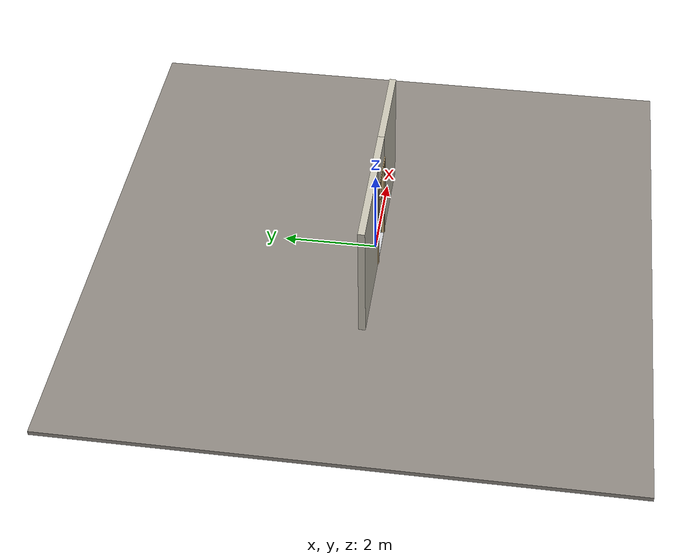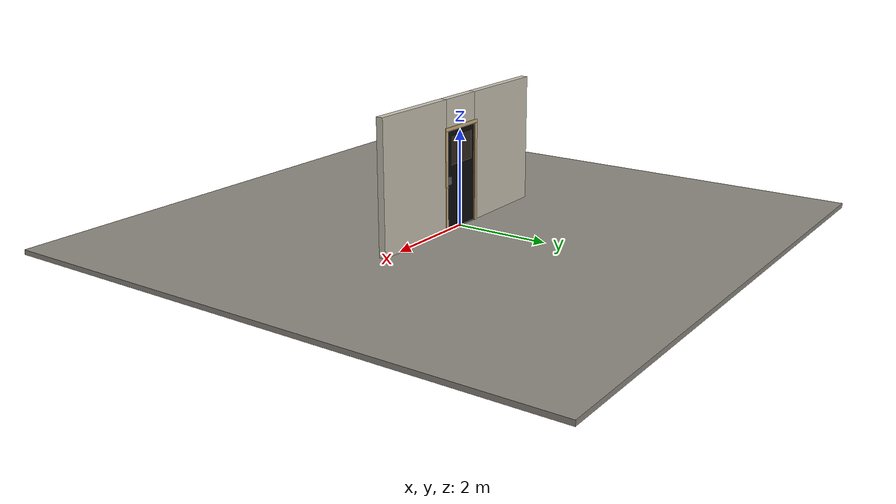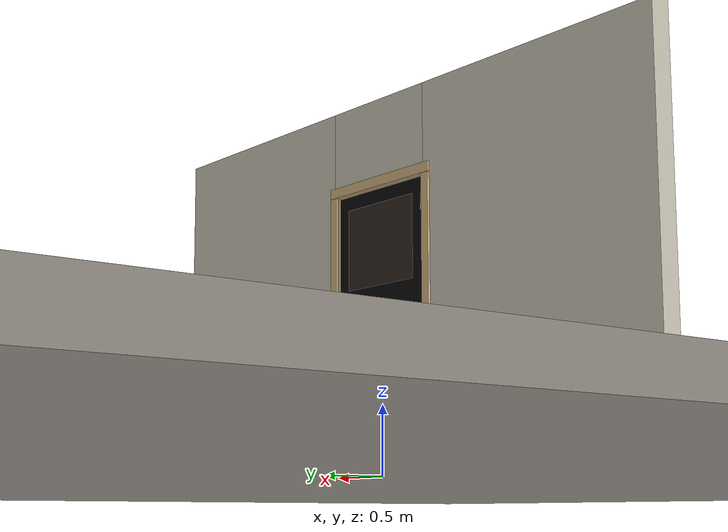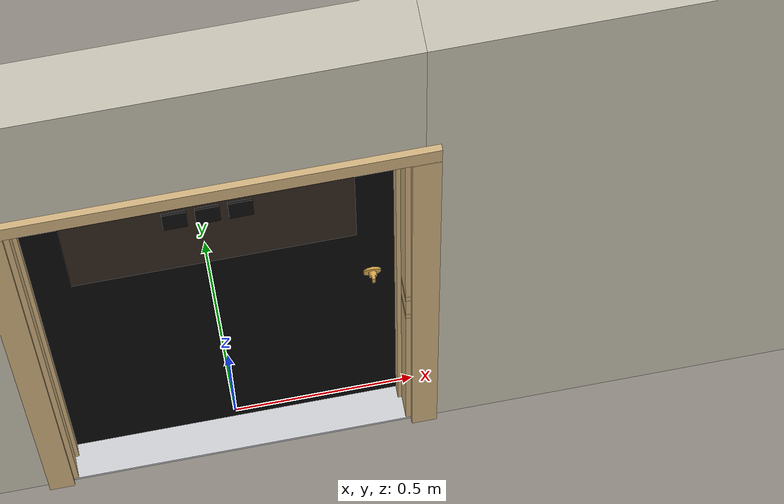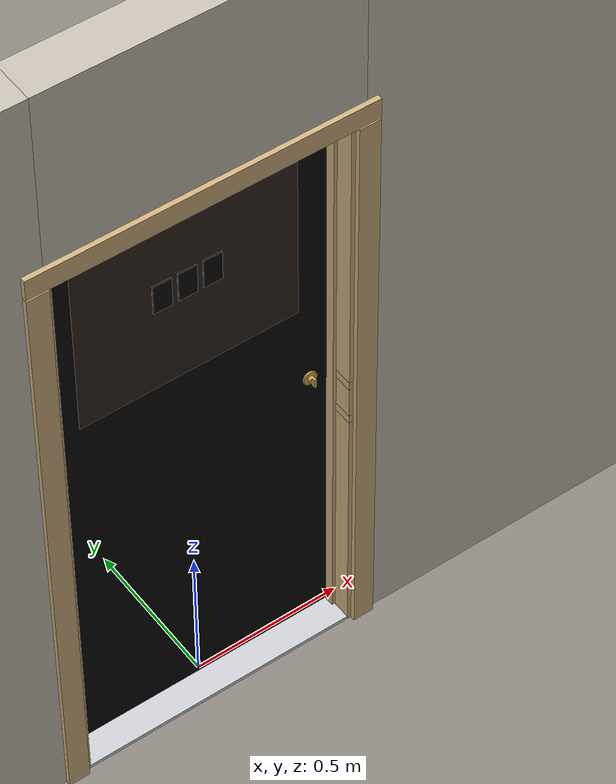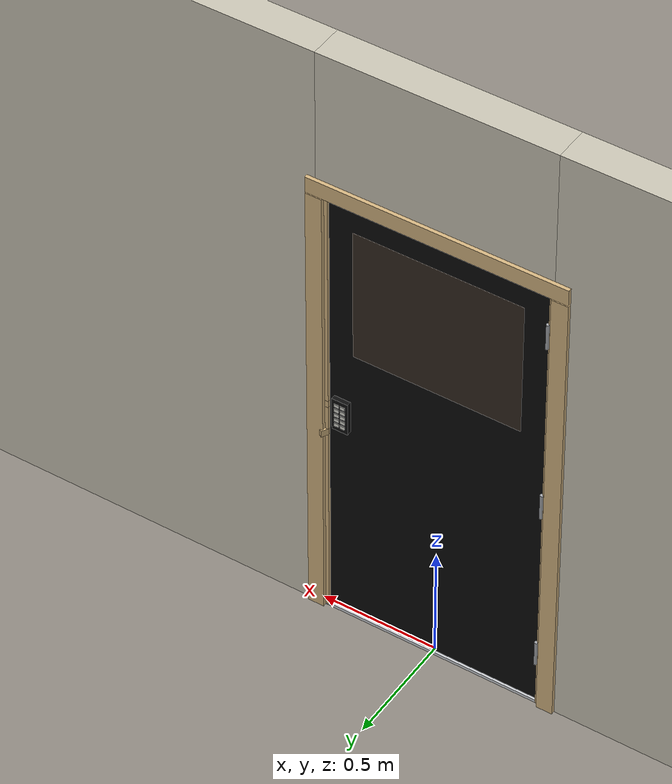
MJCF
<?xml version="1.0" ?>
<mujoco model="db0984_swing_single_full">
  <compiler angle="radian" meshdir="../../hardware" texturedir="../../textures" autolimits="true" inertiafromgeom="false"/>
  <option timestep="0.002" integrator="implicitfast" cone="elliptic" impratio="10" noslip_iterations="3">
    <flag multiccd="enable"/>
  </option>
  <size memory="16M"/>
  <default>
    <geom condim="4" solref="0.005 1" solimp="0.95 0.99 0.001"/>
    <joint solreflimit="0.005 1" solimplimit="0.95 0.99 0.001"/>
    <tendon solreflimit="0.005 1"/>
    <equality solref="0.002 1"/>
  </default>
  <visual>
    <headlight ambient="0.4 0.4 0.4" diffuse="0.7 0.7 0.7" specular="0.2 0.2 0.2"/>
    <quality shadowsize="4096"/>
    <map znear="0.01" zfar="60"/>
  </visual>
  <asset>
    <mesh name="hinge_e22b26c0c1" file="hinge_e22b26c0c1.obj"/>
    <mesh name="hinge_jamb_e1d088f8dc" file="hinge_jamb_e1d088f8dc.obj"/>
    <mesh name="house_numbers_ad0a8e8be0" file="house_numbers_ad0a8e8be0.obj"/>
    <mesh name="keypad_body_3b2d063948" file="keypad_body_3b2d063948.obj"/>
    <mesh name="thumbturn_eb5c9899a3" file="thumbturn_eb5c9899a3.obj"/>
    <material name="mat_floor" rgba="0.55 0.53 0.5 1" specular="0.2" shininess="0.15" reflectance="0"/>
    <material name="mat_wall" rgba="0.78 0.76 0.7 1" specular="0.2" shininess="0.1" reflectance="0"/>
    <material name="mat_leaf" rgba="0.04 0.04 0.04 1" specular="0.23" shininess="0.62" reflectance="0.02"/>
    <material name="mat_glass" rgba="0.45 0.35 0.28 0.45" specular="0.2" shininess="0.95" reflectance="0.1"/>
    <material name="mat_hinge" rgba="0.65 0.66 0.68 1" specular="0.74" shininess="0.5" reflectance="0.36"/>
    <material name="mat_op_nickel_satin" rgba="0.72 0.7 0.66 1" specular="0.8" shininess="0.65" reflectance="0.4"/>
    <material name="mat_trim" rgba="0.85 0.66 0.3 1" specular="0.8" shininess="0.75" reflectance="0.4"/>
    <material name="mat_keypad" rgba="0.05 0.05 0.05 1" specular="0.38" shininess="0.3" reflectance="0.12"/>
    <material name="mat_key" rgba="0.85 0.85 0.82 1" specular="0.2" shininess="0.5" reflectance="0"/>
    <material name="mat_bolt" rgba="0.75 0.76 0.77 1" specular="0.8" shininess="0.65" reflectance="0.4"/>
    <material name="mat_deadbolt" rgba="0.85 0.66 0.3 1" specular="0.8" shininess="0.75" reflectance="0.4"/>
    <material name="mat_frame" rgba="0.82 0.7 0.5 1" specular="0.2" shininess="0.45" reflectance="0"/>
    <material name="mat_threshold" rgba="0.8 0.81 0.83 1" specular="0.8" shininess="0.6" reflectance="0.4"/>
    <material name="mat_numbers" rgba="0.05 0.05 0.05 1" specular="0.38" shininess="0.3" reflectance="0.12"/>
    <material name="mat_drip" rgba="0.8 0.81 0.83 1" specular="0.8" shininess="0.6" reflectance="0.4"/>
    <texture name="skybox" type="skybox" builtin="gradient" rgb1="0.6 0.7 0.85" rgb2="0.9 0.92 0.95" width="256" height="256"/>
  </asset>
  <worldbody>
    <light name="sun" pos="1.5 -2.5 4" dir="-0.3 0.5 -0.8" directional="true" diffuse="0.8 0.8 0.8" specular="0.3 0.3 0.3" castshadow="true"/>
    <light name="fill" pos="-1.5 2.5 3" dir="0.3 -0.5 -0.7" directional="true" diffuse="0.35 0.35 0.4" castshadow="false"/>
    <camera name="robot_view" pos="0 -2.585687 1.734312" xyaxes="1 0 0 0 0.26963 0.962964" fovy="52"/>
    <camera name="far_view" pos="0 2.498687 1.734312" xyaxes="-1 0 0 0 -0.26963 0.962964" fovy="52"/>
    <camera name="iso" pos="1.932062 -2.178937 2.141063" xyaxes="0.741536 0.670913 0 -0.242917 0.268487 0.932151" fovy="46"/>
    <camera name="detail_handle" pos="0.5335 -0.8435 1.194" xyaxes="0.97561 0.219512 0 -0.070934 0.315262 0.94635" fovy="38"/>
    <geom name="floor" type="box" size="6 6 0.05" pos="0 0 -0.05" material="mat_floor" group="0" contype="1" conaffinity="1" friction="0.8 0.005 0.0001" density="2400"/>
    <geom name="wall_left" type="box" size="1.01025 0.0725 1.35" pos="-1.48975 -0.0435 1.35" material="mat_wall" group="0" contype="1" conaffinity="1" friction="0.6 0.005 0.0001" density="800"/>
    <geom name="wall_right" type="box" size="0.99525 0.0725 1.35" pos="1.50475 -0.0435 1.35" material="mat_wall" group="0" contype="1" conaffinity="1" friction="0.6 0.005 0.0001" density="800"/>
    <geom name="wall_header" type="box" size="0.4945 0.0725 0.303" pos="0.015 -0.0435 2.397" material="mat_wall" group="0" contype="1" conaffinity="1" friction="0.6 0.005 0.0001" density="800"/>
    <geom name="hinge_0_jamb" type="mesh" mesh="hinge_jamb_e1d088f8dc" pos="-0.4575 0.029 0.267" quat="0 1 0 0" material="mat_hinge" group="1" contype="0" conaffinity="0" density="7850"/>
    <geom name="hinge_1_jamb" type="mesh" mesh="hinge_jamb_e1d088f8dc" pos="-0.4575 0.029 1.029" quat="0 1 0 0" material="mat_hinge" group="1" contype="0" conaffinity="0" density="7850"/>
    <geom name="hinge_2_jamb" type="mesh" mesh="hinge_jamb_e1d088f8dc" pos="-0.4575 0.029 1.861" quat="0 1 0 0" material="mat_hinge" group="1" contype="0" conaffinity="0" density="7850"/>
    <geom name="leaf_deadbolt_strike_b" type="box" size="0.0155 0.003 0.0005" pos="0.46 0 1.0355" quat="-0.5 -0.5 0.5 0.5" material="mat_deadbolt" group="1" contype="0" conaffinity="0" density="7800"/>
    <geom name="leaf_deadbolt_strike_l" type="box" size="0.003 0.0155 0.0005" pos="0.46 0.0125 1.054" quat="-0.5 -0.5 0.5 0.5" material="mat_deadbolt" group="1" contype="0" conaffinity="0" density="7800"/>
    <geom name="leaf_deadbolt_strike_t" type="box" size="0.0155 0.003 0.0005" pos="0.46 0 1.0725" quat="-0.5 -0.5 0.5 0.5" material="mat_deadbolt" group="1" contype="0" conaffinity="0" density="7800"/>
    <geom name="leaf_deadbolt_strike_r" type="box" size="0.003 0.0155 0.0005" pos="0.46 -0.0125 1.054" quat="-0.5 -0.5 0.5 0.5" material="mat_deadbolt" group="1" contype="0" conaffinity="0" density="7800"/>
    <geom name="jamb_hinge" type="box" size="0.0095 0.0725 1.0225" pos="-0.47 -0.0435 1.0225" material="mat_frame" group="0" contype="1" conaffinity="1" friction="0.6 0.005 0.0001" density="400"/>
    <geom name="strike_914_wall_n" type="box" size="0.0245 0.05475 0.015" pos="0.485 -0.06125 0.914" material="mat_frame" group="0" contype="1" conaffinity="1" friction="0.6 0.005 0.0001" density="400"/>
    <geom name="strike_914_wall_p" type="box" size="0.0245 0.008 0.015" pos="0.485 0.0145 0.914" material="mat_frame" group="0" contype="1" conaffinity="1" friction="0.6 0.005 0.0001" density="400"/>
    <geom name="strike_914_ramp" type="box" size="0.0245 0.016771 0.015" pos="0.489913 0.026543 0.914" quat="0.973249 0 0 -0.229753" material="mat_frame" group="0" contype="1" conaffinity="1" friction="0.12 0.005 0.0001" density="400"/>
    <geom name="strike_914_back" type="box" size="0.0155 0.0065 0.015" pos="0.494 0 0.914" material="mat_frame" group="0" contype="1" conaffinity="1" friction="0.6 0.005 0.0001" density="400"/>
    <geom name="strike_1054_wall_n" type="box" size="0.0245 0.05325 0.0155" pos="0.485 -0.06275 1.054" material="mat_frame" group="0" contype="1" conaffinity="1" friction="0.6 0.005 0.0001" density="400"/>
    <geom name="strike_1054_wall_p" type="box" size="0.0245 0.00975 0.0155" pos="0.485 0.01925 1.054" material="mat_frame" group="0" contype="1" conaffinity="1" friction="0.6 0.005 0.0001" density="400"/>
    <geom name="strike_1054_back" type="box" size="0.0098 0.0095 0.0155" pos="0.4997 0 1.054" material="mat_frame" group="0" contype="1" conaffinity="1" friction="0.6 0.005 0.0001" density="400"/>
    <geom name="jamb_strike_0" type="box" size="0.0245 0.0725 0.4495" pos="0.485 -0.0435 0.4495" material="mat_frame" group="0" contype="1" conaffinity="1" friction="0.6 0.005 0.0001" density="400"/>
    <geom name="jamb_strike_1" type="box" size="0.0245 0.0725 0.05475" pos="0.485 -0.0435 0.98375" material="mat_frame" group="0" contype="1" conaffinity="1" friction="0.6 0.005 0.0001" density="400"/>
    <geom name="jamb_strike_2" type="box" size="0.0245 0.0725 0.48775" pos="0.485 -0.0435 1.55725" material="mat_frame" group="0" contype="1" conaffinity="1" friction="0.6 0.005 0.0001" density="400"/>
    <geom name="jamb_head" type="box" size="0.4945 0.0725 0.0095" pos="0.015 -0.0435 2.0545" material="mat_frame" group="0" contype="1" conaffinity="1" friction="0.6 0.005 0.0001" density="400"/>
    <geom name="head_stud" type="box" size="0.4945 0.0725 0.015" pos="0.015 -0.0435 2.079" material="mat_wall" group="0" contype="1" conaffinity="1" friction="0.6 0.005 0.0001" density="500"/>
    <geom name="stop_hinge" type="box" size="0.0055 0.016 1.0225" pos="-0.455 -0.0385 1.0225" material="mat_frame" group="0" contype="1" conaffinity="1" friction="0.6 0.005 0.0001" density="400"/>
    <geom name="stop_strike" type="box" size="0.0055 0.016 1.0225" pos="0.455 -0.0385 1.0225" material="mat_frame" group="0" contype="1" conaffinity="1" friction="0.6 0.005 0.0001" density="400"/>
    <geom name="stop_head" type="box" size="0.4605 0.016 0.0055" pos="0 -0.0385 2.0395" material="mat_frame" group="0" contype="1" conaffinity="1" friction="0.6 0.005 0.0001" density="400"/>
    <geom name="casing_l_n" type="box" size="0.035 0.008 1.032" pos="-0.5095 -0.124 1.0225" material="mat_frame" group="2" contype="0" conaffinity="0" density="400"/>
    <geom name="casing_r_n" type="box" size="0.035 0.008 1.032" pos="0.5095 -0.124 1.0225" material="mat_frame" group="2" contype="0" conaffinity="0" density="400"/>
    <geom name="casing_h_n" type="box" size="0.5445 0.008 0.035" pos="0 -0.124 2.094" material="mat_frame" group="2" contype="0" conaffinity="0" density="400"/>
    <geom name="casing_l_p" type="box" size="0.035 0.008 1.032" pos="-0.5095 0.037 1.0225" material="mat_frame" group="2" contype="0" conaffinity="0" density="400"/>
    <geom name="casing_r_p" type="box" size="0.035 0.008 1.032" pos="0.5095 0.037 1.0225" material="mat_frame" group="2" contype="0" conaffinity="0" density="400"/>
    <geom name="casing_h_p" type="box" size="0.5445 0.008 0.035" pos="0 0.037 2.094" material="mat_frame" group="2" contype="0" conaffinity="0" density="400"/>
    <geom name="threshold" type="box" size="0.4795 0.0725 0.0065" pos="0 -0.0435 0.0065" material="mat_threshold" group="0" contype="1" conaffinity="1" friction="0.5 0.005 0.0001" density="2700"/>
    <geom name="weather_drip_cap" type="box" size="0.5105 0.03 0.008" pos="0 -0.03 2.09" material="mat_drip" group="2" contype="0" conaffinity="0" density="2700"/>
    <geom name="weather_drip_cap_bracket" type="box" size="0.15315 0.015 0.005" pos="0 0.0145 2.09" material="mat_drip" group="2" contype="0" conaffinity="0" density="7850"/>
    <site name="approach_point" pos="0 -1.5 0" quat="1 0 0 0" size="0.05" rgba="0.2 0.9 0.2 0.5" group="4"/>
    <site name="goal_point" pos="0 1.5 0" quat="1 0 0 0" size="0.05" rgba="0.2 0.9 0.2 0.5" group="4"/>
    <site name="door_plane_center" pos="0 0 1.0225" quat="1 0 0 0" size="0.02" rgba="0.2 0.9 0.2 0.5" group="4"/>
    <body name="leaf" pos="-0.4605 0 0">
      <inertial pos="0.452521 0.001179 1.034046" mass="28.623146" quat="0.500199 0.500424 0.499689 -0.499687" diaginertia="2.19001973 9.664302993 11.843138773"/>
      <joint name="leaf_hinge" type="hinge" axis="0 0 1" pos="0.003 0.029 0" limited="true" range="0 1.570796" damping="0.30611" frictionloss="0.952761" armature="0.02"/>
      <geom name="leaf_slab" type="box" size="0.457 0.022 1.012" pos="0.46 0 1.029" material="mat_leaf" group="0" contype="1" conaffinity="1" friction="0.4 0.005 0.0001" density="1"/>
      <geom name="leaf_glass_0" type="box" size="0.35646 0.0228 0.297528" pos="0.46 0 1.642272" material="mat_glass" group="1" contype="0" conaffinity="0" density="1"/>
      <geom name="hinge_0" type="mesh" mesh="hinge_e22b26c0c1" pos="0.003 0.029 0.267" quat="0 1 0 0" material="mat_hinge" group="1" contype="0" conaffinity="0" density="7850"/>
      <geom name="hinge_1" type="mesh" mesh="hinge_e22b26c0c1" pos="0.003 0.029 1.029" quat="0 1 0 0" material="mat_hinge" group="1" contype="0" conaffinity="0" density="7850"/>
      <geom name="hinge_2" type="mesh" mesh="hinge_e22b26c0c1" pos="0.003 0.029 1.861" quat="0 1 0 0" material="mat_hinge" group="1" contype="0" conaffinity="0" density="7850"/>
      <geom name="leaf_keypad_body" type="mesh" mesh="keypad_body_3b2d063948" pos="0.862 0.022 1.034" quat="0 0 0.707107 0.707107" material="mat_keypad" group="0" contype="1" conaffinity="1" friction="0.6 0.005 0.0001" density="2000"/>
      <geom name="leaf_latch_bolt_faceplate" type="box" size="0.0006 0.011 0.025" pos="0.9164 0 0.914" material="mat_bolt" group="1" contype="0" conaffinity="0" density="8500"/>
      <geom name="leaf_deadbolt_faceplate" type="box" size="0.0006 0.014 0.0245" pos="0.9164 0 1.054" material="mat_deadbolt" group="1" contype="0" conaffinity="0" density="8500"/>
      <geom name="house_numbers" type="mesh" mesh="house_numbers_ad0a8e8be0" pos="0.46 -0.022 1.691" quat="0.707107 0.707107 0 0" material="mat_numbers" group="2" contype="0" conaffinity="0" density="1000"/>
      <site name="leaf_edge_mid" pos="0.917 0 1.012" quat="1 0 0 0" size="0.02" rgba="0.2 0.9 0.2 0.5" group="4"/>
      <body name="leaf_handle" pos="0.862 0 0.914">
        <inertial pos="0 0 0" mass="0.037288" quat="0.5 0.5 0.5 0.5" diaginertia="0.000000671 0.000005817 0.000005817"/>
        <joint name="leaf_handle_hinge" type="hinge" axis="0 -1 0" limited="true" range="0 0.87" damping="0.141426" frictionloss="0.048" stiffness="0.5" springref="-0.5" armature="0.01"/>
        <geom name="leaf_handle_spindle" type="cylinder" size="0.006 0.021" pos="0 0 0" quat="0.707107 -0.707107 0 0" material="mat_op_nickel_satin" group="1" contype="0" conaffinity="0" density="7850"/>
      </body>
      <body name="leaf_keypad_key_1" pos="0.875 0.042 1.082">
        <inertial pos="0 0.0015 0" mass="0.001008" quat="0 0 0.707107 0.707107" diaginertia="0.000000017 0.000000034 0.00000005"/>
        <joint name="leaf_keypad_key_1_slide" type="slide" axis="0 -1 0" limited="true" range="0 0.0015" damping="14" frictionloss="0.05" stiffness="1000" springref="-0.0015" armature="0.1"/>
        <geom name="leaf_keypad_key_1_geom" type="box" size="0.01 0.0015 0.007" pos="0 0.0015 0" material="mat_key" group="0" contype="1" conaffinity="1" friction="0.6 0.005 0.0001" density="1200"/>
        <site name="leaf_keypad_key_1_press" pos="0 0.005 0" quat="1 0 0 0" size="0.008" rgba="0.2 0.9 0.2 0.5" group="4"/>
      </body>
      <body name="leaf_keypad_key_2" pos="0.849 0.042 1.082">
        <inertial pos="0 0.0015 0" mass="0.001008" quat="0 0 0.707107 0.707107" diaginertia="0.000000017 0.000000034 0.00000005"/>
        <joint name="leaf_keypad_key_2_slide" type="slide" axis="0 -1 0" limited="true" range="0 0.0015" damping="14" frictionloss="0.05" stiffness="1000" springref="-0.0015" armature="0.1"/>
        <geom name="leaf_keypad_key_2_geom" type="box" size="0.01 0.0015 0.007" pos="0 0.0015 0" material="mat_key" group="0" contype="1" conaffinity="1" friction="0.6 0.005 0.0001" density="1200"/>
        <site name="leaf_keypad_key_2_press" pos="0 0.005 0" quat="1 0 0 0" size="0.008" rgba="0.2 0.9 0.2 0.5" group="4"/>
      </body>
      <body name="leaf_keypad_key_3" pos="0.875 0.042 1.058">
        <inertial pos="0 0.0015 0" mass="0.001008" quat="0 0 0.707107 0.707107" diaginertia="0.000000017 0.000000034 0.00000005"/>
        <joint name="leaf_keypad_key_3_slide" type="slide" axis="0 -1 0" limited="true" range="0 0.0015" damping="14" frictionloss="0.05" stiffness="1000" springref="-0.0015" armature="0.1"/>
        <geom name="leaf_keypad_key_3_geom" type="box" size="0.01 0.0015 0.007" pos="0 0.0015 0" material="mat_key" group="0" contype="1" conaffinity="1" friction="0.6 0.005 0.0001" density="1200"/>
        <site name="leaf_keypad_key_3_press" pos="0 0.005 0" quat="1 0 0 0" size="0.008" rgba="0.2 0.9 0.2 0.5" group="4"/>
      </body>
      <body name="leaf_keypad_key_4" pos="0.849 0.042 1.058">
        <inertial pos="0 0.0015 0" mass="0.001008" quat="0 0 0.707107 0.707107" diaginertia="0.000000017 0.000000034 0.00000005"/>
        <joint name="leaf_keypad_key_4_slide" type="slide" axis="0 -1 0" limited="true" range="0 0.0015" damping="14" frictionloss="0.05" stiffness="1000" springref="-0.0015" armature="0.1"/>
        <geom name="leaf_keypad_key_4_geom" type="box" size="0.01 0.0015 0.007" pos="0 0.0015 0" material="mat_key" group="0" contype="1" conaffinity="1" friction="0.6 0.005 0.0001" density="1200"/>
        <site name="leaf_keypad_key_4_press" pos="0 0.005 0" quat="1 0 0 0" size="0.008" rgba="0.2 0.9 0.2 0.5" group="4"/>
      </body>
      <body name="leaf_keypad_key_5" pos="0.875 0.042 1.034">
        <inertial pos="0 0.0015 0" mass="0.001008" quat="0 0 0.707107 0.707107" diaginertia="0.000000017 0.000000034 0.00000005"/>
        <joint name="leaf_keypad_key_5_slide" type="slide" axis="0 -1 0" limited="true" range="0 0.0015" damping="14" frictionloss="0.05" stiffness="1000" springref="-0.0015" armature="0.1"/>
        <geom name="leaf_keypad_key_5_geom" type="box" size="0.01 0.0015 0.007" pos="0 0.0015 0" material="mat_key" group="0" contype="1" conaffinity="1" friction="0.6 0.005 0.0001" density="1200"/>
        <site name="leaf_keypad_key_5_press" pos="0 0.005 0" quat="1 0 0 0" size="0.008" rgba="0.2 0.9 0.2 0.5" group="4"/>
      </body>
      <body name="leaf_keypad_key_6" pos="0.849 0.042 1.034">
        <inertial pos="0 0.0015 0" mass="0.001008" quat="0 0 0.707107 0.707107" diaginertia="0.000000017 0.000000034 0.00000005"/>
        <joint name="leaf_keypad_key_6_slide" type="slide" axis="0 -1 0" limited="true" range="0 0.0015" damping="14" frictionloss="0.05" stiffness="1000" springref="-0.0015" armature="0.1"/>
        <geom name="leaf_keypad_key_6_geom" type="box" size="0.01 0.0015 0.007" pos="0 0.0015 0" material="mat_key" group="0" contype="1" conaffinity="1" friction="0.6 0.005 0.0001" density="1200"/>
        <site name="leaf_keypad_key_6_press" pos="0 0.005 0" quat="1 0 0 0" size="0.008" rgba="0.2 0.9 0.2 0.5" group="4"/>
      </body>
      <body name="leaf_keypad_key_7" pos="0.875 0.042 1.01">
        <inertial pos="0 0.0015 0" mass="0.001008" quat="0 0 0.707107 0.707107" diaginertia="0.000000017 0.000000034 0.00000005"/>
        <joint name="leaf_keypad_key_7_slide" type="slide" axis="0 -1 0" limited="true" range="0 0.0015" damping="14" frictionloss="0.05" stiffness="1000" springref="-0.0015" armature="0.1"/>
        <geom name="leaf_keypad_key_7_geom" type="box" size="0.01 0.0015 0.007" pos="0 0.0015 0" material="mat_key" group="0" contype="1" conaffinity="1" friction="0.6 0.005 0.0001" density="1200"/>
        <site name="leaf_keypad_key_7_press" pos="0 0.005 0" quat="1 0 0 0" size="0.008" rgba="0.2 0.9 0.2 0.5" group="4"/>
      </body>
      <body name="leaf_keypad_key_8" pos="0.849 0.042 1.01">
        <inertial pos="0 0.0015 0" mass="0.001008" quat="0 0 0.707107 0.707107" diaginertia="0.000000017 0.000000034 0.00000005"/>
        <joint name="leaf_keypad_key_8_slide" type="slide" axis="0 -1 0" limited="true" range="0 0.0015" damping="14" frictionloss="0.05" stiffness="1000" springref="-0.0015" armature="0.1"/>
        <geom name="leaf_keypad_key_8_geom" type="box" size="0.01 0.0015 0.007" pos="0 0.0015 0" material="mat_key" group="0" contype="1" conaffinity="1" friction="0.6 0.005 0.0001" density="1200"/>
        <site name="leaf_keypad_key_8_press" pos="0 0.005 0" quat="1 0 0 0" size="0.008" rgba="0.2 0.9 0.2 0.5" group="4"/>
      </body>
      <body name="leaf_keypad_key_9" pos="0.875 0.042 0.986">
        <inertial pos="0 0.0015 0" mass="0.001008" quat="0 0 0.707107 0.707107" diaginertia="0.000000017 0.000000034 0.00000005"/>
        <joint name="leaf_keypad_key_9_slide" type="slide" axis="0 -1 0" limited="true" range="0 0.0015" damping="14" frictionloss="0.05" stiffness="1000" springref="-0.0015" armature="0.1"/>
        <geom name="leaf_keypad_key_9_geom" type="box" size="0.01 0.0015 0.007" pos="0 0.0015 0" material="mat_key" group="0" contype="1" conaffinity="1" friction="0.6 0.005 0.0001" density="1200"/>
        <site name="leaf_keypad_key_9_press" pos="0 0.005 0" quat="1 0 0 0" size="0.008" rgba="0.2 0.9 0.2 0.5" group="4"/>
      </body>
      <body name="leaf_keypad_key_0" pos="0.849 0.042 0.986">
        <inertial pos="0 0.0015 0" mass="0.001008" quat="0 0 0.707107 0.707107" diaginertia="0.000000017 0.000000034 0.00000005"/>
        <joint name="leaf_keypad_key_0_slide" type="slide" axis="0 -1 0" limited="true" range="0 0.0015" damping="14" frictionloss="0.05" stiffness="1000" springref="-0.0015" armature="0.1"/>
        <geom name="leaf_keypad_key_0_geom" type="box" size="0.01 0.0015 0.007" pos="0 0.0015 0" material="mat_key" group="0" contype="1" conaffinity="1" friction="0.6 0.005 0.0001" density="1200"/>
        <site name="leaf_keypad_key_0_press" pos="0 0.005 0" quat="1 0 0 0" size="0.008" rgba="0.2 0.9 0.2 0.5" group="4"/>
      </body>
      <body name="leaf_latch_bolt" pos="0.917 0 0.914">
        <inertial pos="-0.008 0 0" mass="0.027149" quat="0 0 0.707107 0.707107" diaginertia="0.000000328 0.000003943 0.000003943"/>
        <joint name="leaf_latch_bolt_slide" type="slide" axis="-1 0 0" limited="true" range="0 0.014" damping="2" frictionloss="0.3" stiffness="400" springref="-0.01" armature="0.1"/>
        <geom name="leaf_latch_bolt_capsule" type="capsule" size="0.005 0.017" pos="-0.008 0 0" quat="0.707107 0 0.707107 0" material="mat_bolt" group="0" contype="1" conaffinity="1" friction="0.2 0.005 0.0001" density="8500"/>
      </body>
      <body name="leaf_deadbolt" pos="0.917 0 1.054">
        <inertial pos="-0.0023 0 0" mass="0.18836" quat="0 0 0.707107 0.707107" diaginertia="0.000013829 0.000052194 0.000057986"/>
        <joint name="leaf_deadbolt_slide" type="slide" axis="-1 0 0" limited="true" range="0 0.0254" damping="5" frictionloss="1.5" armature="0.1"/>
        <geom name="leaf_deadbolt_box" type="box" size="0.0277 0.008 0.0125" pos="-0.0023 0 0" material="mat_deadbolt" group="0" contype="1" conaffinity="1" friction="0.3 0.005 0.0001" density="8500"/>
      </body>
      <body name="leaf_deadbolt_thumbturn" pos="0.852 -0.022 1.054">
        <inertial pos="0 -0.012928 0" mass="0.178946" quat="0.5 0.5 0.5 0.5" diaginertia="0.000026045 0.000026215 0.000032438"/>
        <joint name="leaf_deadbolt_thumbturn_hinge" type="hinge" axis="0 1 0" limited="true" range="0 1.5708" damping="0.05" frictionloss="0.3" armature="0.005"/>
        <geom name="leaf_deadbolt_thumbturn_mesh" type="mesh" mesh="thumbturn_eb5c9899a3" pos="0 0 0" quat="0.707107 0.707107 0 0" material="mat_deadbolt" group="0" contype="1" conaffinity="1" friction="0.6 0.005 0.0001" density="7100"/>
        <geom name="leaf_deadbolt_thumbturn_col" type="box" size="0.006 0.012 0.016" pos="0 -0.02 0" material="mat_deadbolt" group="3" contype="1" conaffinity="1" rgba="0.8 0.3 0.3 0.25" friction="0.6 0.005 0.0001" density="7100"/>
      </body>
    </body>
  </worldbody>
  <tendon>
    <fixed name="leaf_latch_bolt_coupling" limited="true" range="0 10">
      <joint joint="leaf_latch_bolt_slide" coef="1"/>
      <joint joint="leaf_handle_hinge" coef="-0.017284"/>
    </fixed>
  </tendon>
  <equality>
    <joint name="leaf_deadbolt_couple" joint1="leaf_deadbolt_slide" joint2="leaf_deadbolt_thumbturn_hinge" polycoef="0 0.01617 0 0 0" active="true"/>
  </equality>
  <contact>
    <exclude body1="leaf_deadbolt" body2="leaf_deadbolt_thumbturn"/>
  </contact>
  <sensor>
    <jointpos name="leaf_hinge_pos" joint="leaf_hinge"/>
    <jointvel name="leaf_hinge_vel" joint="leaf_hinge"/>
    <jointpos name="leaf_handle_hinge_pos" joint="leaf_handle_hinge"/>
    <jointvel name="leaf_handle_hinge_vel" joint="leaf_handle_hinge"/>
    <jointpos name="leaf_keypad_key_1_slide_pos" joint="leaf_keypad_key_1_slide"/>
    <jointvel name="leaf_keypad_key_1_slide_vel" joint="leaf_keypad_key_1_slide"/>
    <jointpos name="leaf_keypad_key_2_slide_pos" joint="leaf_keypad_key_2_slide"/>
    <jointvel name="leaf_keypad_key_2_slide_vel" joint="leaf_keypad_key_2_slide"/>
    <jointpos name="leaf_keypad_key_3_slide_pos" joint="leaf_keypad_key_3_slide"/>
    <jointvel name="leaf_keypad_key_3_slide_vel" joint="leaf_keypad_key_3_slide"/>
    <jointpos name="leaf_keypad_key_4_slide_pos" joint="leaf_keypad_key_4_slide"/>
    <jointvel name="leaf_keypad_key_4_slide_vel" joint="leaf_keypad_key_4_slide"/>
    <jointpos name="leaf_keypad_key_5_slide_pos" joint="leaf_keypad_key_5_slide"/>
    <jointvel name="leaf_keypad_key_5_slide_vel" joint="leaf_keypad_key_5_slide"/>
    <jointpos name="leaf_keypad_key_6_slide_pos" joint="leaf_keypad_key_6_slide"/>
    <jointvel name="leaf_keypad_key_6_slide_vel" joint="leaf_keypad_key_6_slide"/>
    <jointpos name="leaf_keypad_key_7_slide_pos" joint="leaf_keypad_key_7_slide"/>
    <jointvel name="leaf_keypad_key_7_slide_vel" joint="leaf_keypad_key_7_slide"/>
    <jointpos name="leaf_keypad_key_8_slide_pos" joint="leaf_keypad_key_8_slide"/>
    <jointvel name="leaf_keypad_key_8_slide_vel" joint="leaf_keypad_key_8_slide"/>
    <jointpos name="leaf_keypad_key_9_slide_pos" joint="leaf_keypad_key_9_slide"/>
    <jointvel name="leaf_keypad_key_9_slide_vel" joint="leaf_keypad_key_9_slide"/>
    <jointpos name="leaf_keypad_key_0_slide_pos" joint="leaf_keypad_key_0_slide"/>
    <jointvel name="leaf_keypad_key_0_slide_vel" joint="leaf_keypad_key_0_slide"/>
    <jointpos name="leaf_latch_bolt_slide_pos" joint="leaf_latch_bolt_slide"/>
    <jointvel name="leaf_latch_bolt_slide_vel" joint="leaf_latch_bolt_slide"/>
    <jointpos name="leaf_deadbolt_slide_pos" joint="leaf_deadbolt_slide"/>
    <jointvel name="leaf_deadbolt_slide_vel" joint="leaf_deadbolt_slide"/>
    <jointpos name="leaf_deadbolt_thumbturn_hinge_pos" joint="leaf_deadbolt_thumbturn_hinge"/>
    <jointvel name="leaf_deadbolt_thumbturn_hinge_vel" joint="leaf_deadbolt_thumbturn_hinge"/>
  </sensor>
</mujoco>
